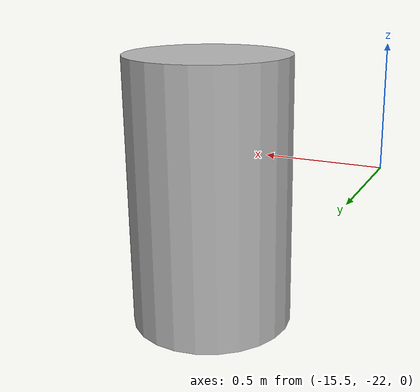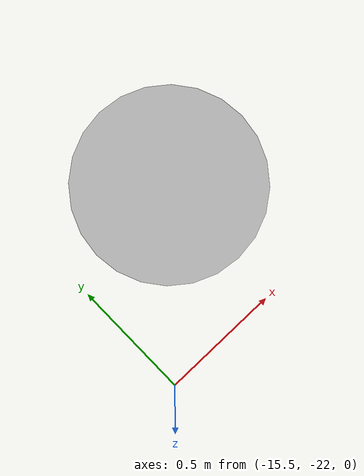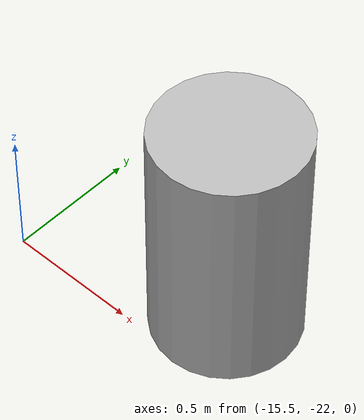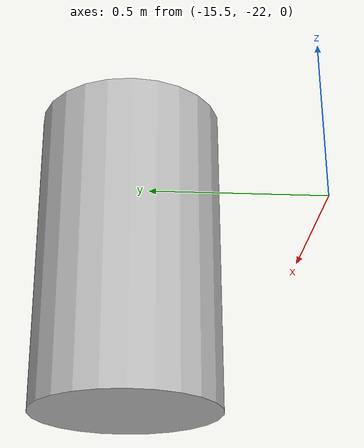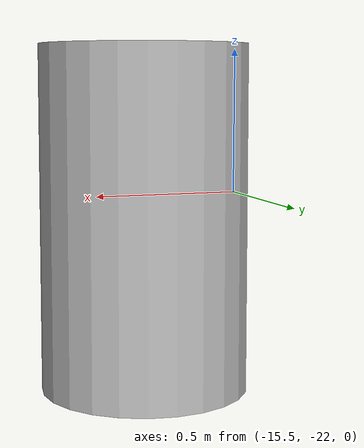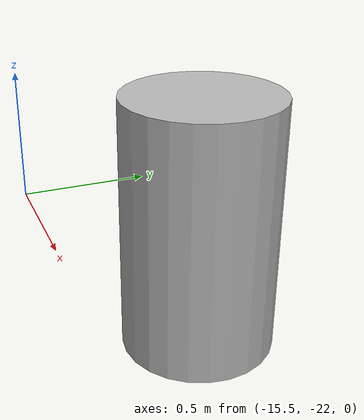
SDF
<?xml version='1.0'?>
<sdf version= "1.4">
    <model name='Construction Barrel'>
      <link name='link'>
        <inertial>
          <pose>0 0 0.5 0 -0 0</pose>
          <mass>500</mass>
          <inertia>
            <ixx>51.2096</ixx>
            <iyy>51.2096</iyy>
            <izz>25</izz>
            <ixy>0</ixy>
            <ixz>0</ixz>
            <iyz>0</iyz>
          </inertia>
        </inertial>
        <collision name='collision'>
          <geometry>
            <cylinder>
                <radius>0.3</radius>
                <length>1.0</length>
            </cylinder>
          </geometry>
          <max_contacts>10</max_contacts>
          <surface>
            <bounce/>
            <friction>
              <ode/>
            </friction>
            <contact>
              <ode/>
            </contact>
          </surface>
        </collision>
        <visual name='visual'>
          <geometry>
            <cylinder>
                <radius>0.3</radius>
                <length>1.0</length>
            </cylinder>
          </geometry>
          <material>
          <script>
            <uri>model://construction_barrel/materials/scripts</uri>
            <uri>model://construction_barrel/materials/textures</uri>
            <name>construction_barrel/Image</name>
          </script>
        </material>
        </visual>
        <velocity_decay>
          <linear>0</linear>
          <angular>0</angular>
        </velocity_decay>
        <self_collide>0</self_collide>
        <kinematic>0</kinematic>
        <gravity>1</gravity>
      </link>
      <pose>-15 -21.4515 0 0 -0 0</pose>
      <static>1</static>
    </model>

</sdf>
